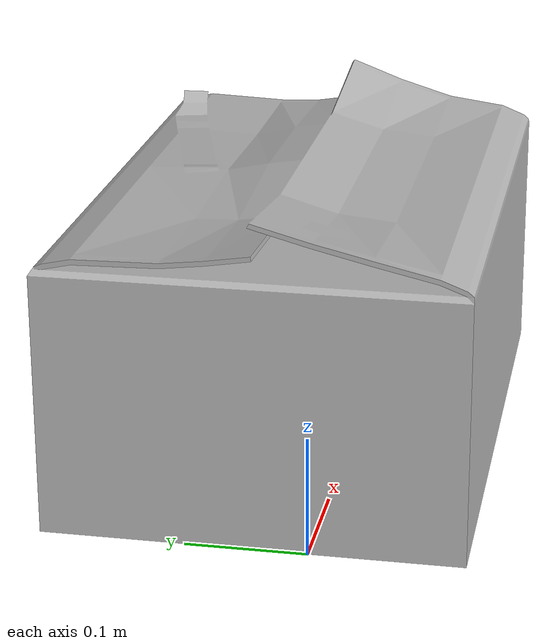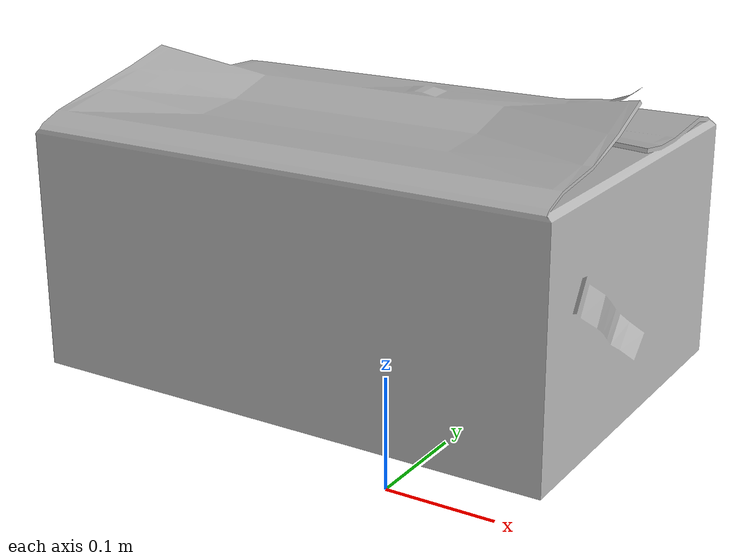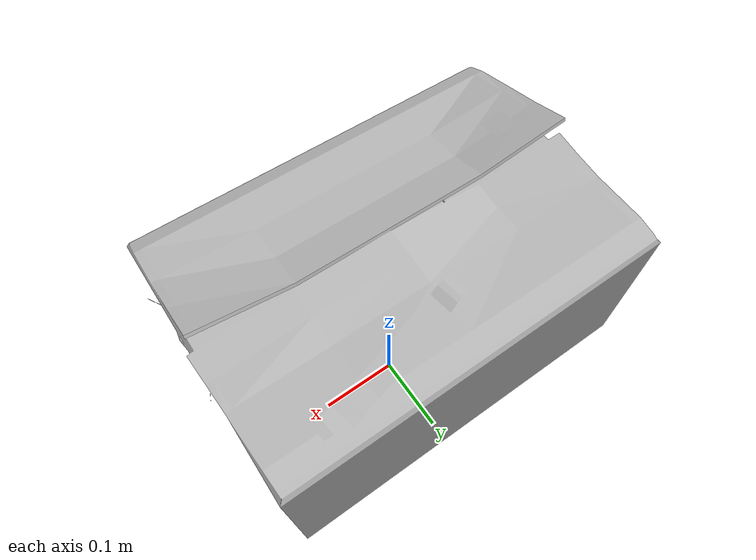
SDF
<?xml version="1.0"?>
<sdf version="1.6">
  <model name="trash_box_01">
    <static>true</static>
    <pose>0 0 0.1164 0 0 0</pose>
    <link name="link">
      <visual name="visual">
        <cast_shadows>false</cast_shadows>
        <geometry>
          <mesh>
            <uri>model://trash_box_01/meshes/trash_box_01.dae</uri>
            <scale>0.5500 0.5500 0.5500</scale>
          </mesh>
        </geometry>
      </visual>
    </link>
  </model>
</sdf>
